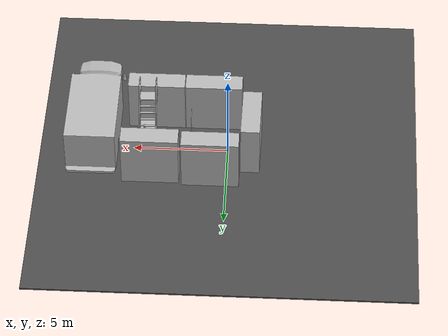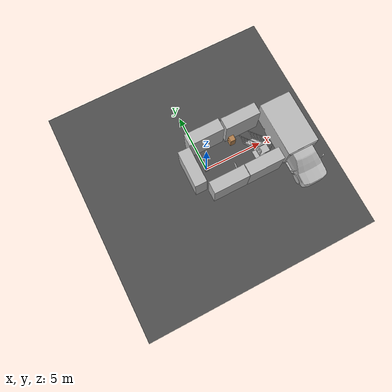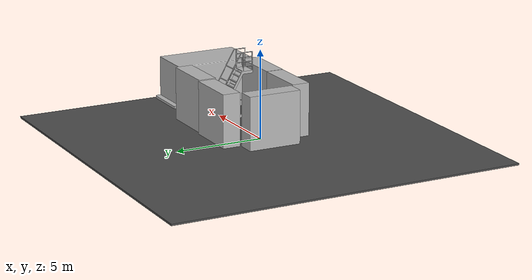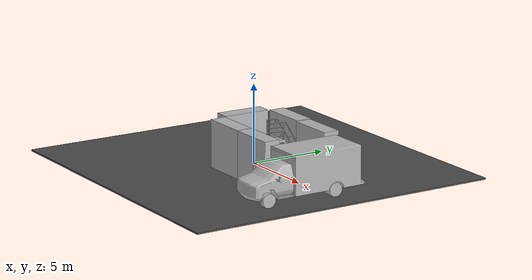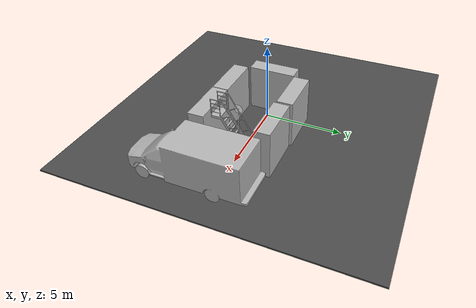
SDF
<sdf version="1.7">
 <world name="default">
  <include><uri>model://box_and_kinect</uri></include>
  <light name="sun" type="directional">
   <pose>0 0 10 0 -0 0</pose>
   <diffuse>0.8 0.8 0.8 1</diffuse>
   <specular>0.2 0.2 0.2 1</specular>
   <attenuation>
    <range>1000</range>
    <constant>0.9</constant>
    <linear>0.01</linear>
    <quadratic>0.001</quadratic>
   </attenuation>
   <direction>-0.5 0.1 -0.9</direction>
   <spot><inner_angle>0</inner_angle><outer_angle>0</outer_angle><falloff>0</falloff></spot>
  </light>
  <gravity>0 0 -9.8</gravity>
  <magnetic_field>6e-06 2.3e-05 -4.2e-05</magnetic_field>
  <atmosphere type="adiabatic"/>
  <physics type="ode">
   <max_step_size>0.001</max_step_size>
   <real_time_factor>1</real_time_factor>
   <real_time_update_rate>1000</real_time_update_rate>
  </physics>
  <scene><ambient>0.4 0.4 0.4 1</ambient><background>0.7 0.7 0.7 1</background><shadows>1</shadows></scene>
  <spherical_coordinates>
   <surface_model>EARTH_WGS84</surface_model>
   <latitude_deg>0</latitude_deg>
   <longitude_deg>0</longitude_deg>
   <elevation>0</elevation>
   <heading_deg>0</heading_deg>
  </spherical_coordinates>
  <model name="asphalt_plane">
   <static>1</static>
   <link name="link">
    <collision name="collision"><geometry><box><size>20 20 0.1</size></box></geometry></collision>
    <visual name="visual">
     <cast_shadows>0</cast_shadows>
     <geometry><box><size>20 20 0.1</size></box></geometry>
     <material>
      <script>
       <uri>model://asphalt_plane/materials/scripts</uri>
       <uri>model://asphalt_plane/materials/textures</uri>
       <name>vrc/asphalt</name>
      </script>
     </material>
    </visual>
   </link>
   <pose>0 0 -0.05 0 -0 0</pose>
  </model>
  <model name="brick_box_3x1x3">
   <static>1</static>
   <link name="chassis">
    <pose>0 0 1.5 0 -0 0</pose>
    <collision name="collision"><geometry><box><size>3 1 3</size></box></geometry></collision>
    <visual name="visual">
     <geometry><mesh><uri>model://brick_box_3x1x3/meshes/simple_box.dae</uri><scale>3 1 3</scale></mesh></geometry>
     <material>
      <script>
       <uri>model://brick_box_3x1x3/materials/scripts</uri>
       <uri>model://brick_box_3x1x3/materials/textures</uri>
       <name>BrickBox/Diffuse</name>
      </script>
     </material>
    </visual>
   </link>
   <pose>0.839775 2.06305 0 0 -0 0</pose>
  </model>
  <model name="brick_box_3x1x3_clone">
   <static>1</static>
   <link name="chassis">
    <pose>0 0 1.5 0 -0 0</pose>
    <collision name="collision"><geometry><box><size>3 1 3</size></box></geometry></collision>
    <visual name="visual">
     <geometry><mesh><uri>model://brick_box_3x1x3/meshes/simple_box.dae</uri><scale>3 1 3</scale></mesh></geometry>
     <material>
      <script>
       <uri>model://brick_box_3x1x3/materials/scripts</uri>
       <uri>model://brick_box_3x1x3/materials/textures</uri>
       <name>BrickBox/Diffuse</name>
      </script>
     </material>
    </visual>
   </link>
   <pose>3.99175 1.9407 0 0 -0 0</pose>
  </model>
  <model name="brick_box_3x1x3_clone_0">
   <static>1</static>
   <link name="chassis">
    <pose>0 0 1.5 0 -0 0</pose>
    <collision name="collision"><geometry><box><size>3 1 3</size></box></geometry></collision>
    <visual name="visual">
     <geometry><mesh><uri>model://brick_box_3x1x3/meshes/simple_box.dae</uri><scale>3 1 3</scale></mesh></geometry>
     <material>
      <script>
       <uri>model://brick_box_3x1x3/materials/scripts</uri>
       <uri>model://brick_box_3x1x3/materials/textures</uri>
       <name>BrickBox/Diffuse</name>
      </script>
     </material>
    </visual>
   </link>
   <pose>0.832781 -2.13098 0 0 -0 0</pose>
  </model>
  <model name="brick_box_3x1x3_clone_1">
   <static>1</static>
   <link name="chassis">
    <pose>0 0 1.5 0 -0 0</pose>
    <collision name="collision"><geometry><box><size>3 1 3</size></box></geometry></collision>
    <visual name="visual">
     <geometry><mesh><uri>model://brick_box_3x1x3/meshes/simple_box.dae</uri><scale>3 1 3</scale></mesh></geometry>
     <material>
      <script>
       <uri>model://brick_box_3x1x3/materials/scripts</uri>
       <uri>model://brick_box_3x1x3/materials/textures</uri>
       <name>BrickBox/Diffuse</name>
      </script>
     </material>
    </visual>
   </link>
   <pose>3.8727 -2.13676 0 0 -0 0</pose>
  </model>
  <model name="brick_box_3x1x3_clone_2">
   <static>1</static>
   <link name="chassis">
    <pose>0 0 1.5 0 -0 0</pose>
    <collision name="collision"><geometry><box><size>3 1 3</size></box></geometry></collision>
    <visual name="visual">
     <geometry><mesh><uri>model://brick_box_3x1x3/meshes/simple_box.dae</uri><scale>3 1 3</scale></mesh></geometry>
     <material>
      <script>
       <uri>model://brick_box_3x1x3/materials/scripts</uri>
       <uri>model://brick_box_3x1x3/materials/textures</uri>
       <name>BrickBox/Diffuse</name>
      </script>
     </material>
    </visual>
   </link>
   <pose>-1.22386 -0.000463 0 0 0 -1.58021</pose>
  </model>
  <model name="Stop Sign">
   <static>1</static>
   <link name="link">
    <collision name="collision">
     <geometry><mesh><uri>model://stop_sign/meshes/stop_sign.dae</uri></mesh></geometry>
    </collision>
    <visual name="visual">
     <geometry><mesh><uri>model://stop_sign/meshes/stop_sign.dae</uri></mesh></geometry>
     <material>
      <script>
       <uri>model://stop_sign/materials/scripts</uri>
       <uri>model://stop_sign/materials/textures</uri>
       <name>StopSign/Diffuse</name>
      </script>
     </material>
    </visual>
   </link>
   <pose>2.03217 -1.13363 0.008257 0 0 -1.62064</pose>
  </model>
  <model name="cabinet">
   <static>1</static>
   <link name="cabinet_bottom_plate">
    <inertial>
     <pose>0 0 -1 0 -0 0</pose>
     <inertia><ixx>2.05</ixx><ixy>0</ixy><ixz>0</ixz><iyy>2.05</iyy><iyz>0</iyz><izz>2.05</izz></inertia>
     <mass>25</mass>
    </inertial>
    <collision name="cabinet_bottom_plate_geom">
     <pose>0 0 0.01 0 -0 0</pose>
     <geometry><box><size>0.45 0.45 0.02</size></box></geometry>
    </collision>
    <visual name="cabinet_bottom_plate_geom_visual">
     <pose>0 0 0.01 0 -0 0</pose>
     <geometry><box><size>0.45 0.45 0.02</size></box></geometry>
     <material>
      <script><uri>file://media/materials/scripts/gazebo.material</uri><name>Gazebo/Wood</name></script>
     </material>
    </visual>
    <collision name="cabinet_bottom_plate_geom_cabinet_back_plate">
     <pose>0.235 0 0.51 0 -0 0</pose>
     <geometry><box><size>0.02 0.45 1.02</size></box></geometry>
    </collision>
    <visual name="cabinet_bottom_plate_geom_cabinet_back_plate_visual">
     <pose>0.235 0 0.51 0 -0 0</pose>
     <geometry><box><size>0.02 0.45 1.02</size></box></geometry>
     <material>
      <script><uri>file://media/materials/scripts/gazebo.material</uri><name>Gazebo/Wood</name></script>
     </material>
    </visual>
    <collision name="cabinet_bottom_plate_geom_cabinet_left_plate">
     <pose>0 0.235 0.51 0 -0 0</pose>
     <geometry><box><size>0.45 0.02 1.02</size></box></geometry>
    </collision>
    <visual name="cabinet_bottom_plate_geom_cabinet_left_plate_visual">
     <pose>0 0.235 0.51 0 -0 0</pose>
     <geometry><box><size>0.45 0.02 1.02</size></box></geometry>
     <material>
      <script><uri>file://media/materials/scripts/gazebo.material</uri><name>Gazebo/Wood</name></script>
     </material>
    </visual>
    <collision name="cabinet_bottom_plate_geom_cabinet_middle_plate">
     <pose>0 0 0.51 0 -0 0</pose>
     <geometry><box><size>0.45 0.45 0.02</size></box></geometry>
    </collision>
    <visual name="cabinet_bottom_plate_geom_cabinet_middle_plate_visual">
     <pose>0 0 0.51 0 -0 0</pose>
     <geometry><box><size>0.45 0.45 0.02</size></box></geometry>
     <material>
      <script><uri>file://media/materials/scripts/gazebo.material</uri><name>Gazebo/Wood</name></script>
     </material>
    </visual>
    <collision name="cabinet_bottom_plate_geom_cabinet_right_plate">
     <pose>0 -0.235 0.51 0 -0 0</pose>
     <geometry><box><size>0.45 0.02 1.02</size></box></geometry>
    </collision>
    <visual name="cabinet_bottom_plate_geom_cabinet_right_plate_visual">
     <pose>0 -0.235 0.51 0 -0 0</pose>
     <geometry><box><size>0.45 0.02 1.02</size></box></geometry>
     <material>
      <script><uri>file://media/materials/scripts/gazebo.material</uri><name>Gazebo/Wood</name></script>
     </material>
    </visual>
    <collision name="cabinet_bottom_plate_geom_cabinet_top_plate">
     <pose>0 0 1.01 0 -0 0</pose>
     <geometry><box><size>0.45 0.45 0.02</size></box></geometry>
    </collision>
    <visual name="cabinet_bottom_plate_geom_cabinet_top_plate_visual">
     <pose>0 0 1.01 0 -0 0</pose>
     <geometry><box><size>0.45 0.45 0.02</size></box></geometry>
     <material>
      <script><uri>file://media/materials/scripts/gazebo.material</uri><name>Gazebo/Wood</name></script>
     </material>
    </visual>
   </link>
   <pose>2.93647 1.1581 0 0 -0 0</pose>
  </model>
  <model name="cafe_table">
   <static>1</static>
   <link name="link">
    <collision name="surface">
     <pose>0 0 0.755 0 -0 0</pose>
     <geometry><box><size>0.913 0.913 0.04</size></box></geometry>
    </collision>
    <collision name="column">
     <pose>0 0 0.37 0 -0 0</pose>
     <geometry><box><size>0.042 0.042 0.74</size></box></geometry>
    </collision>
    <collision name="base">
     <pose>0 0 0.02 0 -0 0</pose>
     <geometry><box><size>0.56 0.56 0.04</size></box></geometry>
    </collision>
    <visual name="visual">
     <geometry><mesh><uri>model://cafe_table/meshes/cafe_table.dae</uri></mesh></geometry>
    </visual>
   </link>
   <pose>4.34611 -0.997775 0 0 -0 0</pose>
  </model>
  <model name="beer">
   <link name="link">
    <pose>0 0 0.115 0 -0 0</pose>
    <inertial>
     <mass>0.39</mass>
     <inertia><ixx>0.00058</ixx><ixy>0</ixy><ixz>0</ixz><iyy>0.00058</iyy><iyz>0</iyz><izz>0.00019</izz></inertia>
    </inertial>
    <collision name="collision">
     <geometry><cylinder><radius>0.055</radius><length>0.23</length></cylinder></geometry>
    </collision>
    <visual name="visual">
     <geometry><cylinder><radius>0.055</radius><length>0.23</length></cylinder></geometry>
     <material>
      <script>
       <uri>model://beer/materials/scripts</uri>
       <uri>model://beer/materials/textures</uri>
       <name>Beer/Diffuse</name>
      </script>
     </material>
    </visual>
   </link>
   <pose>4.47942 -0.752608 0.774991 1.3e-05 -1.8e-05 8.5e-05</pose>
  </model>
  <model name="ladder">
   <static>1</static>
   <link name="link">
    <collision name="step0">
     <pose>0 -0.96703 0.286 0 -0 0</pose>
     <geometry><box><size>0.9 0.1016 0.0381</size></box></geometry>
    </collision>
    <collision name="step1">
     <pose>0 -0.79106 0.59054 0 -0 0</pose>
     <geometry><box><size>0.9 0.1016 0.0381</size></box></geometry>
    </collision>
    <collision name="step2">
     <pose>0 -0.61509 0.89508 0 -0 0</pose>
     <geometry><box><size>0.9 0.1016 0.0381</size></box></geometry>
    </collision>
    <collision name="step3">
     <pose>0 -0.43912 1.19962 0 -0 0</pose>
     <geometry><box><size>0.9 0.1016 0.0381</size></box></geometry>
    </collision>
    <collision name="step4">
     <pose>0 -0.26315 1.50416 0 -0 0</pose>
     <geometry><box><size>0.9 0.1016 0.0381</size></box></geometry>
    </collision>
    <collision name="step5">
     <pose>0 -0.08718 1.8087 0 -0 0</pose>
     <geometry><box><size>0.9 0.1016 0.0381</size></box></geometry>
    </collision>
    <collision name="step6">
     <pose>0 0.08879 2.11324 0 -0 0</pose>
     <geometry><box><size>0.9 0.1016 0.0381</size></box></geometry>
    </collision>
    <collision name="step7">
     <pose>0 0.26476 2.41778 0 -0 0</pose>
     <geometry><box><size>0.9 0.1016 0.0381</size></box></geometry>
    </collision>
    <collision name="landing">
     <pose>0 0.73039 2.72432 0 -0 0</pose>
     <geometry><box><size>0.9 0.6096 0.0381</size></box></geometry>
    </collision>
    <collision name="left_side_wall">
     <pose>-0.43217 -0.37451 1.3386 1.0472 -0 0</pose>
     <geometry><box><size>0.0508 3.16758 0.13</size></box></geometry>
    </collision>
    <collision name="left_side_landing_wall">
     <pose>-0.43217 0.69819 2.667 0 -0 0</pose>
     <geometry><box><size>0.0508 0.67401 0.1524</size></box></geometry>
    </collision>
    <collision name="left_railing_landing_3">
     <pose>-0.433355 0.66933 3.81 1.5707 -0 0</pose>
     <geometry><cylinder><radius>0.02413</radius><length>0.73172</length></cylinder></geometry>
    </collision>
    <collision name="left_railing_landing_2">
     <pose>-0.433355 0.73166 3.5433 1.5707 -0 0</pose>
     <geometry><cylinder><radius>0.02413</radius><length>0.5588</length></cylinder></geometry>
    </collision>
    <collision name="left_railing_landing_1">
     <pose>-0.433355 0.73166 3.2766 1.5707 -0 0</pose>
     <geometry><cylinder><radius>0.02413</radius><length>0.5588</length></cylinder></geometry>
    </collision>
    <collision name="left_railing_landing_0">
     <pose>-0.433355 0.73166 3.0099 1.5707 -0 0</pose>
     <geometry><cylinder><radius>0.02413</radius><length>0.5588</length></cylinder></geometry>
    </collision>
    <collision name="left_railing_landing_upright_back">
     <pose>-0.433355 1.01088 3.2766 0 -0 0</pose>
     <geometry><cylinder><radius>0.02413</radius><length>1.0668</length></cylinder></geometry>
    </collision>
    <collision name="left_railing_landing_upright_front">
     <pose>-0.433355 0.45208 3.2766 0 -0 0</pose>
     <geometry><cylinder><radius>0.02413</radius><length>1.0668</length></cylinder></geometry>
    </collision>
    <collision name="left_railing_upright_4">
     <pose>-0.433355 0.0699 2.80986 1.03414 -0 0</pose>
     <geometry><cylinder><radius>0.02413</radius><length>0.57</length></cylinder></geometry>
    </collision>
    <collision name="left_railing_upright_3">
     <pose>-0.433355 -0.31006 2.15169 1.03414 -0 0</pose>
     <geometry><cylinder><radius>0.02413</radius><length>0.57</length></cylinder></geometry>
    </collision>
    <collision name="left_railing_upright_2">
     <pose>-0.433355 -0.6911 1.49172 1.03414 -0 0</pose>
     <geometry><cylinder><radius>0.02413</radius><length>0.57</length></cylinder></geometry>
    </collision>
    <collision name="left_railing_upright_1">
     <pose>-0.433355 -1.0732 0.82995 1.03414 -0 0</pose>
     <geometry><cylinder><radius>0.02413</radius><length>0.57</length></cylinder></geometry>
    </collision>
    <collision name="left_railing_upright_0">
     <pose>-0.433355 -1.45316 0.17179 1.03414 -0 0</pose>
     <geometry><cylinder><radius>0.02413</radius><length>0.57</length></cylinder></geometry>
    </collision>
    <collision name="left_railing_long">
     <pose>-0.433355 -0.781 1.9068 -0.523503 0 0</pose>
     <geometry><cylinder><radius>0.02413</radius><length>4.42295</length></cylinder></geometry>
    </collision>
    <collision name="right_side_wall">
     <pose>0.43217 -0.37451 1.3386 1.0472 -0 0</pose>
     <geometry><box><size>0.0508 3.16758 0.13</size></box></geometry>
    </collision>
    <collision name="right_side_landing_wall">
     <pose>0.43217 0.69819 2.667 0 -0 0</pose>
     <geometry><box><size>0.0508 0.67401 0.1524</size></box></geometry>
    </collision>
    <collision name="right_railing_landing_3">
     <pose>0.433355 0.66933 3.81 1.5707 -0 0</pose>
     <geometry><cylinder><radius>0.02413</radius><length>0.73172</length></cylinder></geometry>
    </collision>
    <collision name="right_railing_landing_2">
     <pose>0.433355 0.73166 3.5433 1.5707 -0 0</pose>
     <geometry><cylinder><radius>0.02413</radius><length>0.5588</length></cylinder></geometry>
    </collision>
    <collision name="right_railing_landing_1">
     <pose>0.433355 0.73166 3.2766 1.5707 -0 0</pose>
     <geometry><cylinder><radius>0.02413</radius><length>0.5588</length></cylinder></geometry>
    </collision>
    <collision name="right_railing_landing_0">
     <pose>0.433355 0.73166 3.0099 1.5707 -0 0</pose>
     <geometry><cylinder><radius>0.02413</radius><length>0.5588</length></cylinder></geometry>
    </collision>
    <collision name="right_railing_landing_upright_back">
     <pose>0.433355 1.01088 3.2766 0 -0 0</pose>
     <geometry><cylinder><radius>0.02413</radius><length>1.0668</length></cylinder></geometry>
    </collision>
    <collision name="right_railing_landing_upright_front">
     <pose>0.433355 0.45208 3.2766 0 -0 0</pose>
     <geometry><cylinder><radius>0.02413</radius><length>1.0668</length></cylinder></geometry>
    </collision>
    <collision name="right_railing_upright_4">
     <pose>0.433355 0.0699 2.80986 1.03414 -0 0</pose>
     <geometry><cylinder><radius>0.02413</radius><length>0.57</length></cylinder></geometry>
    </collision>
    <collision name="right_railing_upright_3">
     <pose>0.433355 -0.31006 2.15169 1.03414 -0 0</pose>
     <geometry><cylinder><radius>0.02413</radius><length>0.57</length></cylinder></geometry>
    </collision>
    <collision name="right_railing_upright_2">
     <pose>0.433355 -0.6911 1.49172 1.03414 -0 0</pose>
     <geometry><cylinder><radius>0.02413</radius><length>0.57</length></cylinder></geometry>
    </collision>
    <collision name="right_railing_upright_1">
     <pose>0.433355 -1.0732 0.82995 1.03414 -0 0</pose>
     <geometry><cylinder><radius>0.02413</radius><length>0.57</length></cylinder></geometry>
    </collision>
    <collision name="right_railing_upright_0">
     <pose>0.433355 -1.45316 0.17179 1.03414 -0 0</pose>
     <geometry><cylinder><radius>0.02413</radius><length>0.57</length></cylinder></geometry>
    </collision>
    <collision name="right_railing_long">
     <pose>0.433355 -0.781 1.9068 -0.523503 0 0</pose>
     <geometry><cylinder><radius>0.02413</radius><length>4.42295</length></cylinder></geometry>
    </collision>
    <visual name="visual">
     <geometry><mesh><uri>model://drc_practice_ladder/meshes/ladder.dae</uri></mesh></geometry>
    </visual>
   </link>
   <pose>4.25391 -0.479338 0 0 0 -3.12826</pose>
  </model>
  <model name="ambulance">
   <static>1</static>
   <link name="link">
    <collision name="collision">
     <geometry>
      <mesh><scale>0.0254 0.0254 0.0254</scale><uri>model://ambulance/meshes/ambulance.obj</uri></mesh>
     </geometry>
    </collision>
    <visual name="visual">
     <geometry>
      <mesh><scale>0.0254 0.0254 0.0254</scale><uri>model://ambulance/meshes/ambulance.obj</uri></mesh>
     </geometry>
    </visual>
   </link>
   <pose>7.12708 -1.30884 0 0 -0 0</pose>
  </model>
 </world>
</sdf>

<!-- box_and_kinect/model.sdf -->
<sdf version='1.7'>
  <model name='box_and_kinect'>
    <include>
      <uri>model://kinect_ros</uri>
      <pose> 0 0 0.35 0 0 0 </pose>
    </include>

    <include>
      <uri>model://moving_box</uri>
      <pose> 0 0 0.15 0 0 0 </pose>
    </include>

    <joint name="box_kinect_joint" type="fixed">
      <child>kinect_ros::link</child>
      <parent>moving_box::robot_link</parent>
    </joint>

  </model>
</sdf>

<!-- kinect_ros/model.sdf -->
<sdf version="1.5">
  <model name="kinect_ros">
    <pose>0 0 0.036 0 0 0</pose>
    <link name="link">
      <inertial>
        <mass>0.1</mass>
      </inertial>
      <collision name="collision">
        <geometry>
          <box>
            <size>0.073000 0.276000 0.072000</size>
          </box>
        </geometry>
      </collision>
      <visual name="visual">
        <geometry>
          <mesh>
            <uri>model://kinect/meshes/kinect.dae</uri>
          </mesh>
        </geometry>
      </visual>

      <sensor name="camera" type="depth">
        <update_rate>20</update_rate>
        <camera>
          <horizontal_fov>1.047198</horizontal_fov>
          <image>
            <width>640</width>
            <height>480</height>
            <format>R8G8B8</format>
          </image>
          <clip>
            <near>0.05</near>
            <far>3</far>
          </clip>
        </camera>

        <plugin name="camera_plugin" filename="libgazebo_ros_openni_kinect.so">
          <baseline>0.2</baseline>
          <alwaysOn>true</alwaysOn>
          <updateRate>0.0</updateRate>
          <cameraName>camera_ir</cameraName>
          <imageTopicName>/camera/rgb/image_rect_color</imageTopicName>
          <cameraInfoTopicName>/camera/rgb/camera_info</cameraInfoTopicName>
          <depthImageTopicName>/camera/depth_registered/image_raw</depthImageTopicName>
          <depthImageCameraInfoTopicName>/camera/depth/camera_info</depthImageCameraInfoTopicName>
          <pointCloudTopicName>/camera/depth/points</pointCloudTopicName>
          <frameName>camera_link</frameName>
          <pointCloudCutoff>0.5</pointCloudCutoff>
          <pointCloudCutoffMax>3.0</pointCloudCutoffMax>
          <distortionK1>0</distortionK1>
          <distortionK2>0</distortionK2>
          <distortionK3>0</distortionK3>
          <distortionT1>0</distortionT1>
          <distortionT2>0</distortionT2>
          <CxPrime>0</CxPrime>
          <Cx>0</Cx>
          <Cy>0</Cy>
          <focalLength>0</focalLength>
          <hackBaseline>0</hackBaseline>
        </plugin>
      </sensor>
    </link>
  </model>
</sdf>

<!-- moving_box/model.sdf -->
<sdf version='1.7'>
  <model name='moving_box'>
    <pose>0 0 0.15 0 0 0</pose>

    <link name='robot_link'>
      <inertial>
        <mass>1</mass>
        <inertia>
          <ixx>0.166667</ixx>
          <ixy>0</ixy>
          <ixz>0</ixz>
          <iyy>0.166667</iyy>
          <iyz>0</iyz>
          <izz>0.166667</izz>
        </inertia>
        <pose>0 0 0 0 -0 0</pose>
      </inertial>
      <pose>0 0 0 0 -0 0</pose>
      <gravity>1</gravity>
      <self_collide>0</self_collide>
      <kinematic>0</kinematic>
      <enable_wind>0</enable_wind>
      <visual name='visual'>
        <pose>0 0 0 0 -0 0</pose>
        <geometry>
          <box>
            <size>0.3 0.3 0.3</size>
          </box>
        </geometry>
        <material>
          <lighting>1</lighting>
          <script>
            <uri>file://media/materials/scripts/gazebo.material</uri>
            <name>Gazebo/Grey</name>
          </script>
          <shader type='pixel'>
            <normal_map>__default__</normal_map>
          </shader>
          <ambient>0.3 0.3 0.3 1</ambient>
          <diffuse>0.7 0.7 0.7 1</diffuse>
          <specular>0.01 0.01 0.01 1</specular>
          <emissive>0 0 0 1</emissive>
        </material>
        <transparency>0</transparency>
        <cast_shadows>1</cast_shadows>
      </visual>
      <collision name='collision'>
        <laser_retro>0</laser_retro>
        <max_contacts>10</max_contacts>
        <pose>0 0 0 0 -0 0</pose>
        <geometry>
          <box>
            <size>0.3 0.3 0.3</size>
          </box>
        </geometry>
        <surface>
          <friction>
            <ode>
              <mu>1</mu>
              <mu2>1</mu2>
              <fdir1>0 0 0</fdir1>
              <slip1>0</slip1>
              <slip2>0</slip2>
            </ode>
            <torsional>
              <coefficient>1</coefficient>
              <patch_radius>0</patch_radius>
              <surface_radius>0</surface_radius>
              <use_patch_radius>1</use_patch_radius>
              <ode>
                <slip>0</slip>
              </ode>
            </torsional>
          </friction>
          <bounce>
            <restitution_coefficient>0</restitution_coefficient>
            <threshold>1e+06</threshold>
          </bounce>
          <contact>
            <collide_without_contact>0</collide_without_contact>
            <collide_without_contact_bitmask>1</collide_without_contact_bitmask>
            <collide_bitmask>1</collide_bitmask>
            <ode>
              <soft_cfm>0</soft_cfm>
              <soft_erp>0.2</soft_erp>
              <kp>1e+13</kp>
              <kd>1</kd>
              <max_vel>0.01</max_vel>
              <min_depth>0</min_depth>
            </ode>
            <bullet>
              <split_impulse>1</split_impulse>
              <split_impulse_penetration_threshold>-0.01</split_impulse_penetration_threshold>
              <soft_cfm>0</soft_cfm>
              <soft_erp>0.2</soft_erp>
              <kp>1e+13</kp>
              <kd>1</kd>
            </bullet>
          </contact>
        </surface>
      </collision>
    </link>
    <static>0</static>
    <allow_auto_disable>1</allow_auto_disable>

    <plugin name='object_controller' filename='libgazebo_ros_planar_move.so'>
      <commandTopic>cmd_vel</commandTopic>
      <odometryTopic>odom</odometryTopic>
      <odometryFrame>odom</odometryFrame>
      <odometryRate>20.0</odometryRate>
      <robotBaseFrame>base_link</robotBaseFrame>
    </plugin>

  </model>
</sdf>
